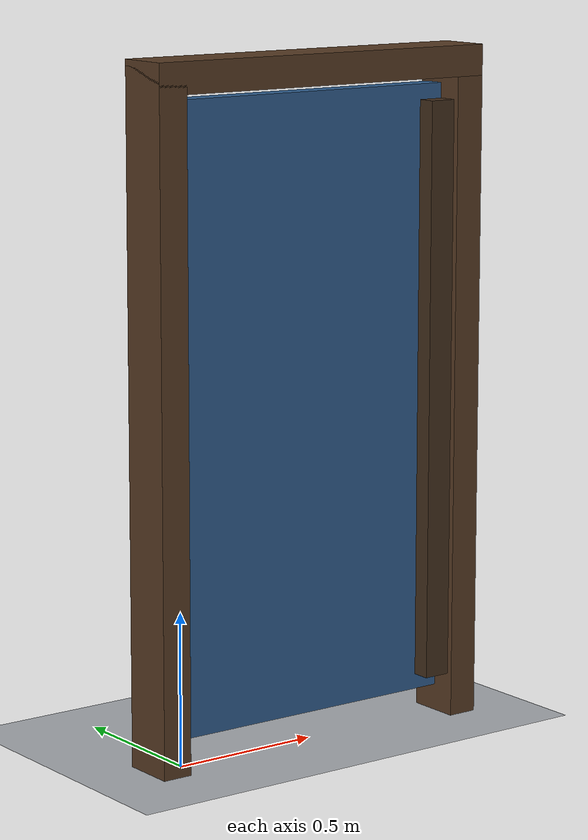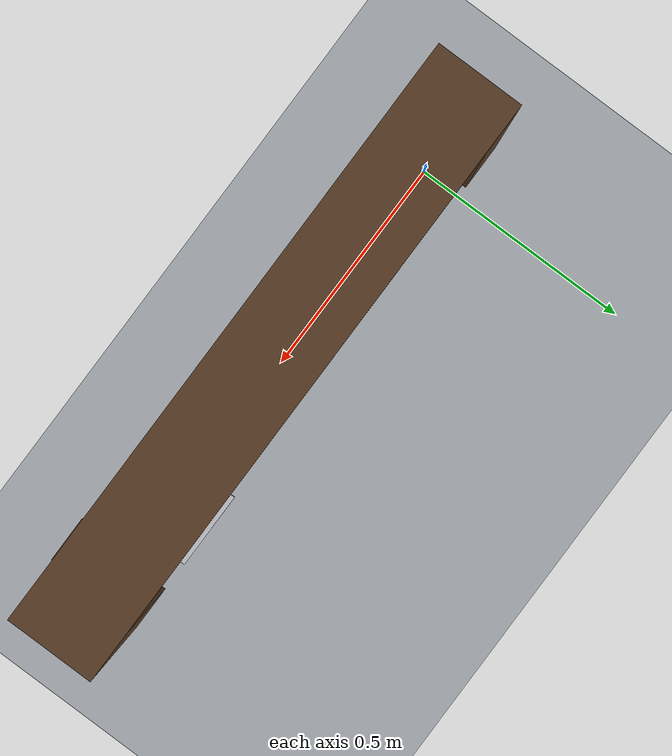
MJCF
<mujoco model="self_closing_door">
  <compiler angle="radian" autolimits="true"/>
  <option timestep="0.002" gravity="0 0 -9.81" integrator="implicitfast"/>

  <visual>
    <headlight ambient="0.35 0.35 0.35" diffuse="0.7 0.7 0.7" specular="0.2 0.2 0.2"/>
  </visual>

  <worldbody>
    <light name="overhead_light" pos="0 -2 4" dir="0 0.4 -1"/>
    <camera name="overview" pos="3 -4 3" xyaxes="0.8 0.6 0 -0.3 0.4 0.866"/>

    <geom name="floor" type="plane" pos="0 0 0" size="4 4 0.1" rgba="0.65 0.67 0.69 1" friction="0.8 0.005 0.0001"/>

    <body name="frame" pos="0 0 0">
      <geom name="hinge_jamb" type="box" pos="-0.075 0 1.1" size="0.05 0.09 1.1" rgba="0.34 0.23 0.14 1"/>
      <geom name="latch_jamb" type="box" pos="1.075 0 1.1" size="0.05 0.09 1.1" rgba="0.34 0.23 0.14 1"/>
      <geom name="header" type="box" pos="0.5 0 2.17" size="0.625 0.09 0.05" rgba="0.34 0.23 0.14 1"/>
      <geom name="closing_stop" type="box" pos="0.96 -0.065 1.1" size="0.045 0.03 0.95" rgba="0.26 0.18 0.11 1" friction="0.8 0.005 0.0001" solref="0.01 1" solimp="0.99 0.99 0.001"/>
      <geom name="hinge_pin" type="cylinder" pos="0 0 1.1" size="0.018 1" rgba="0.3 0.3 0.32 1" contype="0" conaffinity="0"/>
    </body>

    <body name="door" pos="0 0 0.1">
      <joint name="hinge" type="hinge" pos="0 0 0" axis="0 0 1" limited="true" range="0 1.6" stiffness="40" springref="-0.08" damping="24" armature="0.02" solreflimit="0.01 1" solimplimit="0.99 0.99 0.001"/>
      <geom name="door_panel" type="box" pos="0.5 0 1" size="0.5 0.035 1" mass="12" rgba="0.18 0.36 0.55 1" friction="0.8 0.005 0.0001" solref="0.01 1" solimp="0.99 0.99 0.001"/>
      <geom name="door_handle" type="box" pos="0.83 0.065 1.05" size="0.08 0.03 0.015" mass="0.1" rgba="0.75 0.75 0.78 1" contype="0" conaffinity="0"/>
    </body>
  </worldbody>

  <keyframe>
    <key name="start" qpos="1.3" qvel="0"/>
  </keyframe>
</mujoco>
